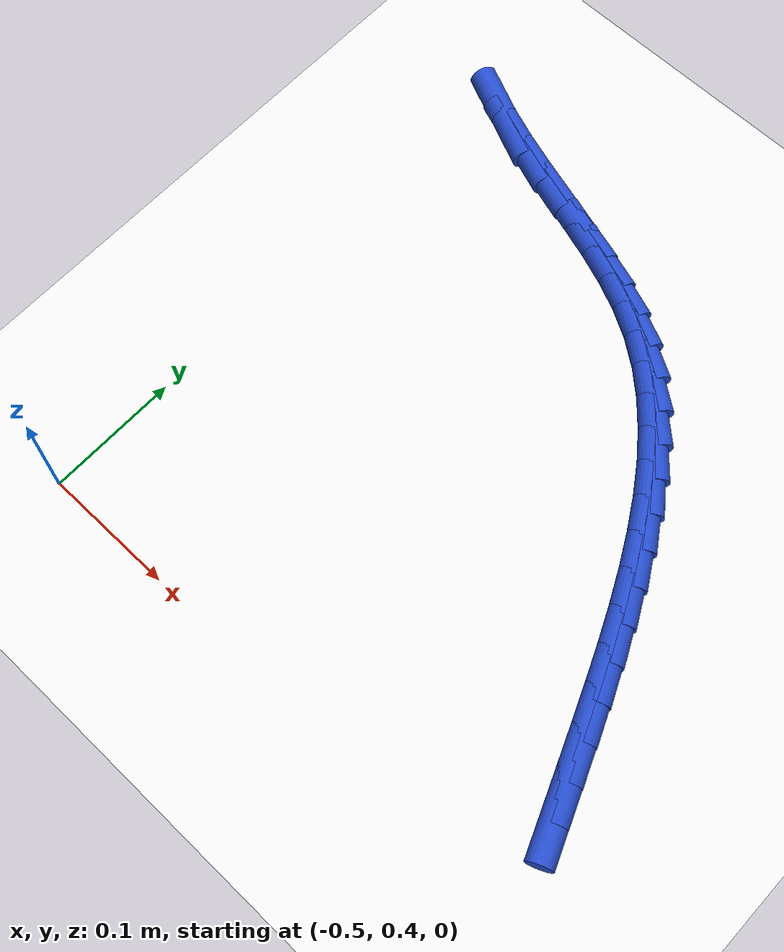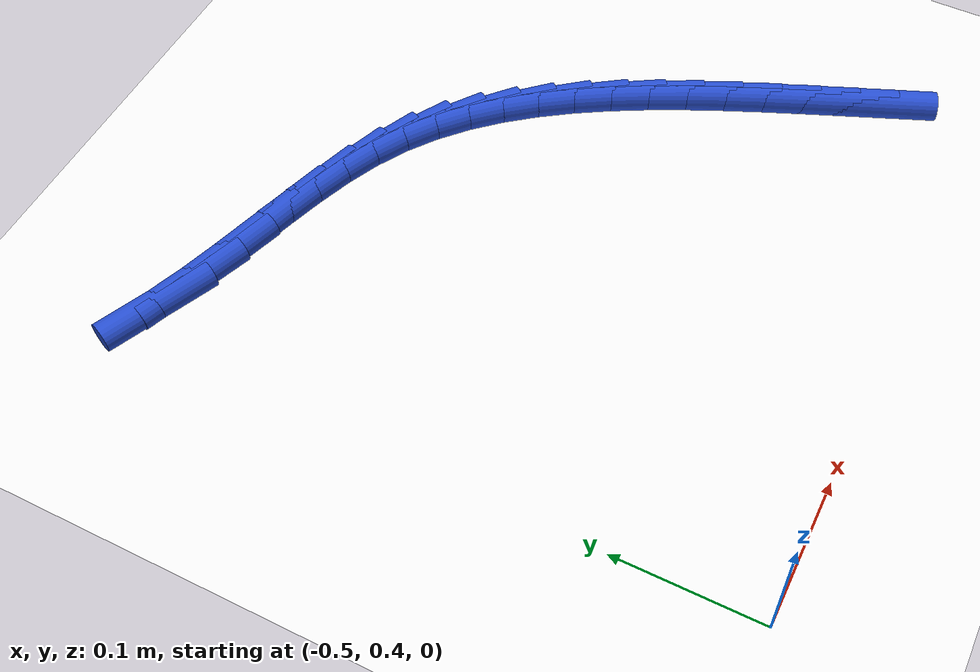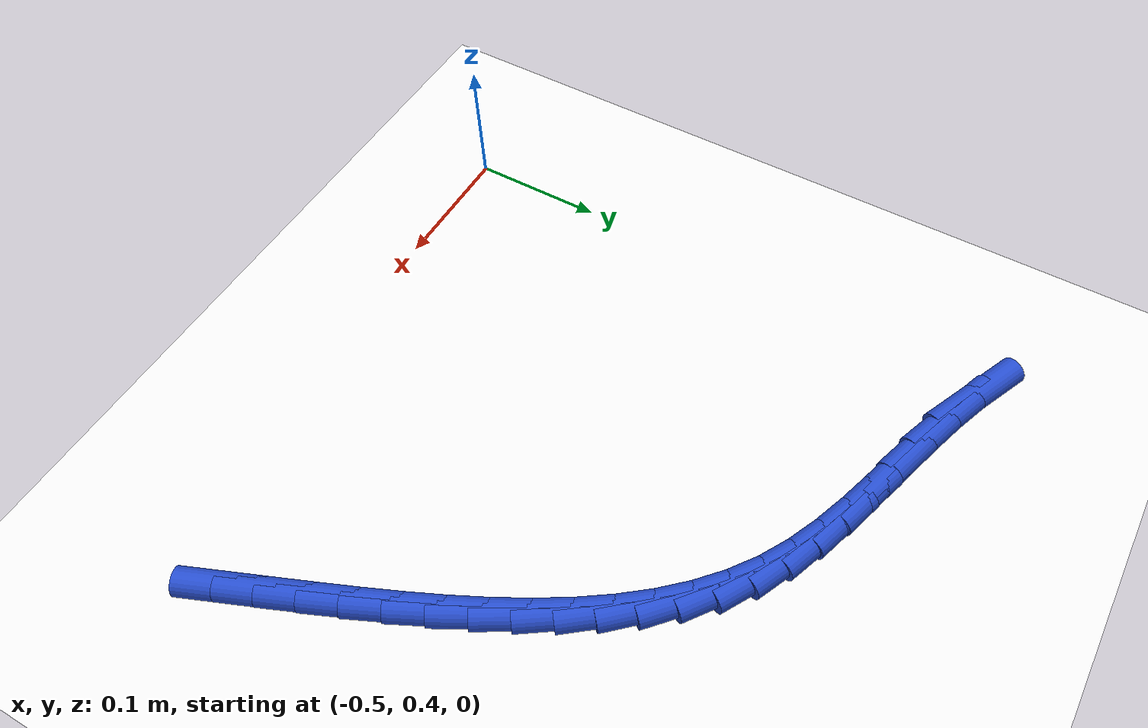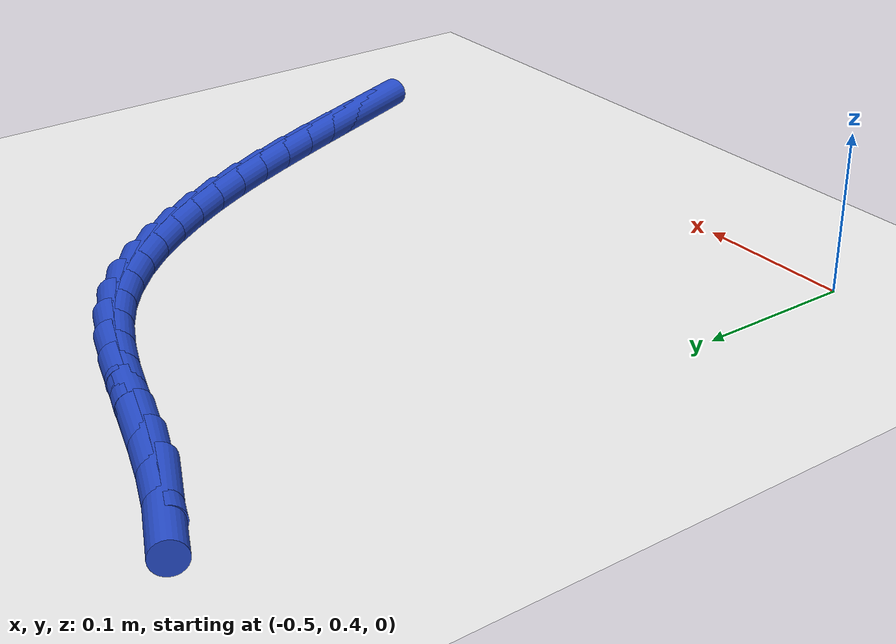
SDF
<sdf version="1.6">
 <world name="default">
  <model name="ground_plane">
   <static>1</static>
   <link name="link">
    <collision name="collision">
     <geometry><plane><normal>0 0 1</normal><size>100 100</size></plane></geometry>
     <surface><friction><ode><mu>100</mu><mu2>50</mu2></ode></friction></surface>
    </collision>
    <visual name="visual">
     <cast_shadows>0</cast_shadows>
     <geometry><plane><normal>0 0 1</normal><size>100 100</size></plane></geometry>
     <material>
      <script><uri>file://media/materials/scripts/gazebo.material</uri><name>Gazebo/WhiteGlow</name></script>
     </material>
    </visual>
   </link>
  </model>
  <model name="line">
   <link name="link_19">
    <pose>-0.10848356889117092 0.47022789527790226 0.01 0 1.57 -1.1843311557571234</pose>
    <collision name="collision">
     <geometry><cylinder><radius>0.01</radius><length>0.08</length></cylinder></geometry>
    </collision>
    <visual name="visual">
     <material>
      <script><name>Gazebo/Blue</name><uri>file://media/materials/scripts/gazebo.material</uri></script>
     </material>
     <geometry><cylinder><radius>0.01</radius><length>0.08</length></cylinder></geometry>
    </visual>
   </link>
   <link name="link_20">
    <pose>-0.11849428021562163 0.494828541328971 0.01 0 1.57 -1.1823245672838831</pose>
    <collision name="collision">
     <geometry><cylinder><radius>0.01</radius><length>0.08</length></cylinder></geometry>
    </collision>
    <visual name="visual">
     <material>
      <script><name>Gazebo/Blue</name><uri>file://media/materials/scripts/gazebo.material</uri></script>
     </material>
     <geometry><cylinder><radius>0.01</radius><length>0.08</length></cylinder></geometry>
    </visual>
   </link>
   <link name="link_21">
    <pose>-0.12868170892180247 0.5197202737119428 0.01 0 1.57 -1.1761671465852923</pose>
    <collision name="collision">
     <geometry><cylinder><radius>0.01</radius><length>0.08</length></cylinder></geometry>
    </collision>
    <visual name="visual">
     <material>
      <script><name>Gazebo/Blue</name><uri>file://media/materials/scripts/gazebo.material</uri></script>
     </material>
     <geometry><cylinder><radius>0.01</radius><length>0.08</length></cylinder></geometry>
    </visual>
   </link>
   <link name="link_22">
    <pose>-0.13911452883023867 0.5447704668550407 0.01 0 1.57 -1.1628799807247618</pose>
    <collision name="collision">
     <geometry><cylinder><radius>0.01</radius><length>0.08</length></cylinder></geometry>
    </collision>
    <visual name="visual">
     <material>
      <script><name>Gazebo/Blue</name><uri>file://media/materials/scripts/gazebo.material</uri></script>
     </material>
     <geometry><cylinder><radius>0.01</radius><length>0.08</length></cylinder></geometry>
    </visual>
   </link>
   <link name="link_23">
    <pose>-0.14991313088695515 0.5697581972686315 0.01 0 1.57 -1.142280752724943</pose>
    <collision name="collision">
     <geometry><cylinder><radius>0.01</radius><length>0.08</length></cylinder></geometry>
    </collision>
    <visual name="visual">
     <material>
      <script><name>Gazebo/Blue</name><uri>file://media/materials/scripts/gazebo.material</uri></script>
     </material>
     <geometry><cylinder><radius>0.01</radius><length>0.08</length></cylinder></geometry>
    </visual>
   </link>
   <link name="link_24">
    <pose>-0.16119835637123747 0.5944617725980527 0.01 0 1.57 -1.113988222840046</pose>
    <collision name="collision">
     <geometry><cylinder><radius>0.01</radius><length>0.08</length></cylinder></geometry>
    </collision>
    <visual name="visual">
     <material>
      <script><name>Gazebo/Blue</name><uri>file://media/materials/scripts/gazebo.material</uri></script>
     </material>
     <geometry><cylinder><radius>0.01</radius><length>0.08</length></cylinder></geometry>
    </visual>
   </link>
   <link name="link_25">
    <pose>-0.17309104656237134 0.6186595004886406 0.01 0 1.57 -1.0774099486632638</pose>
    <collision name="collision">
     <geometry><cylinder><radius>0.01</radius><length>0.08</length></cylinder></geometry>
    </collision>
    <visual name="visual">
     <material>
      <script><name>Gazebo/Blue</name><uri>file://media/materials/scripts/gazebo.material</uri></script>
     </material>
     <geometry><cylinder><radius>0.01</radius><length>0.08</length></cylinder></geometry>
    </visual>
   </link>
   <link name="link_26">
    <pose>-0.18571204273964248 0.6421296885857328 0.01 0 1.57 -1.031763293250655</pose>
    <collision name="collision">
     <geometry><cylinder><radius>0.01</radius><length>0.08</length></cylinder></geometry>
    </collision>
    <visual name="visual">
     <material>
      <script><name>Gazebo/Blue</name><uri>file://media/materials/scripts/gazebo.material</uri></script>
     </material>
     <geometry><cylinder><radius>0.01</radius><length>0.08</length></cylinder></geometry>
    </visual>
   </link>
   <link name="link_27">
    <pose>-0.19918218618233643 0.6646506445346656 0.01 0 1.57 -0.9761185756669005</pose>
    <collision name="collision">
     <geometry><cylinder><radius>0.01</radius><length>0.08</length></cylinder></geometry>
    </collision>
    <visual name="visual">
     <material>
      <script><name>Gazebo/Blue</name><uri>file://media/materials/scripts/gazebo.material</uri></script>
     </material>
     <geometry><cylinder><radius>0.01</radius><length>0.08</length></cylinder></geometry>
    </visual>
   </link>
   <link name="link_28">
    <pose>-0.21362231816973884 0.6860006759807761 0.01 0 1.57 -0.9094869585952983</pose>
    <collision name="collision">
     <geometry><cylinder><radius>0.01</radius><length>0.08</length></cylinder></geometry>
    </collision>
    <visual name="visual">
     <material>
      <script><name>Gazebo/Blue</name><uri>file://media/materials/scripts/gazebo.material</uri></script>
     </material>
     <geometry><cylinder><radius>0.01</radius><length>0.08</length></cylinder></geometry>
    </visual>
   </link>
   <link name="link_29">
    <pose>-0.22915327998113538 0.7059580905694012 0.01 0 1.57 -0.8309826037865946</pose>
    <collision name="collision">
     <geometry><cylinder><radius>0.01</radius><length>0.08</length></cylinder></geometry>
    </collision>
    <visual name="visual">
     <material>
      <script><name>Gazebo/Blue</name><uri>file://media/materials/scripts/gazebo.material</uri></script>
     </material>
     <geometry><cylinder><radius>0.01</radius><length>0.08</length></cylinder></geometry>
    </visual>
   </link>
   <link name="link_30">
    <pose>-0.24589591289581172 0.7243011959458776 0.01 0 1.57 -0.7400868185193471</pose>
    <collision name="collision">
     <geometry><cylinder><radius>0.01</radius><length>0.08</length></cylinder></geometry>
    </collision>
    <visual name="visual">
     <material>
      <script><name>Gazebo/Blue</name><uri>file://media/materials/scripts/gazebo.material</uri></script>
     </material>
     <geometry><cylinder><radius>0.01</radius><length>0.08</length></cylinder></geometry>
    </visual>
   </link>
   <link name="link_31">
    <pose>-0.26397105819305355 0.7408082997555427 0.01 0 1.57 -0.6370147606950207</pose>
    <collision name="collision">
     <geometry><cylinder><radius>0.01</radius><length>0.08</length></cylinder></geometry>
    </collision>
    <visual name="visual">
     <material>
      <script><name>Gazebo/Blue</name><uri>file://media/materials/scripts/gazebo.material</uri></script>
     </material>
     <geometry><cylinder><radius>0.01</radius><length>0.08</length></cylinder></geometry>
    </visual>
   </link>
   <link name="link_32">
    <pose>-0.2834995571521465 0.755257709643733 0.01 0 1.57 -0.5255721786639235</pose>
    <collision name="collision">
     <geometry><cylinder><radius>0.01</radius><length>0.08</length></cylinder></geometry>
    </collision>
    <visual name="visual">
     <material>
      <script><name>Gazebo/Blue</name><uri>file://media/materials/scripts/gazebo.material</uri></script>
     </material>
     <geometry><cylinder><radius>0.01</radius><length>0.08</length></cylinder></geometry>
    </visual>
   </link>
   <link name="link_33">
    <pose>-0.3045726057084721 0.7674797507098817 0.01 0 1.57 -0.4290555227034722</pose>
    <collision name="collision">
     <geometry><cylinder><radius>0.01</radius><length>0.08</length></cylinder></geometry>
    </collision>
    <visual name="visual">
     <material>
      <script><name>Gazebo/Blue</name><uri>file://media/materials/scripts/gazebo.material</uri></script>
     </material>
     <geometry><cylinder><radius>0.01</radius><length>0.08</length></cylinder></geometry>
    </visual>
   </link>
   <link name="link_34">
    <pose>-0.32702653983433433 0.7777519402490459 0.01 0 1.57 -0.3587634826626513</pose>
    <collision name="collision">
     <geometry><cylinder><radius>0.01</radius><length>0.08</length></cylinder></geometry>
    </collision>
    <visual name="visual">
     <material>
      <script><name>Gazebo/Blue</name><uri>file://media/materials/scripts/gazebo.material</uri></script>
     </material>
     <geometry><cylinder><radius>0.01</radius><length>0.08</length></cylinder></geometry>
    </visual>
   </link>
   <link name="link_35">
    <pose>-0.3505677990555753 0.7865797194576891 0.01 0 1.57 -0.31356564099690865</pose>
    <collision name="collision">
     <geometry><cylinder><radius>0.01</radius><length>0.08</length></cylinder></geometry>
    </collision>
    <visual name="visual">
     <material>
      <script><name>Gazebo/Blue</name><uri>file://media/materials/scripts/gazebo.material</uri></script>
     </material>
     <geometry><cylinder><radius>0.01</radius><length>0.08</length></cylinder></geometry>
    </visual>
   </link>
   <link name="link_36">
    <pose>-0.37490178841728555 0.7944703446926963 0.01 0 1.57 -0.29186647726337633</pose>
    <collision name="collision">
     <geometry><cylinder><radius>0.01</radius><length>0.08</length></cylinder></geometry>
    </collision>
    <visual name="visual">
     <material>
      <script><name>Gazebo/Blue</name><uri>file://media/materials/scripts/gazebo.material</uri></script>
     </material>
     <geometry><cylinder><radius>0.01</radius><length>0.08</length></cylinder></geometry>
    </visual>
   </link>
   <link name="link_37">
    <pose>-0.39973391296455635 0.8019310723109544 0.01 0 1.57 -0.29246008512684474</pose>
    <collision name="collision">
     <geometry><cylinder><radius>0.01</radius><length>0.08</length></cylinder></geometry>
    </collision>
    <visual name="visual">
     <material>
      <script><name>Gazebo/Blue</name><uri>file://media/materials/scripts/gazebo.material</uri></script>
     </material>
     <geometry><cylinder><radius>0.01</radius><length>0.08</length></cylinder></geometry>
    </visual>
   </link>
   <link name="link_38">
    <pose>-0.4247695777424789 0.8094691586693493 0.01 0 1.57 -0.3148011750580302</pose>
    <collision name="collision">
     <geometry><cylinder><radius>0.01</radius><length>0.08</length></cylinder></geometry>
    </collision>
    <visual name="visual">
     <material>
      <script><name>Gazebo/Blue</name><uri>file://media/materials/scripts/gazebo.material</uri></script>
     </material>
     <geometry><cylinder><radius>0.01</radius><length>0.08</length></cylinder></geometry>
    </visual>
   </link>
   <link name="link_39">
    <pose>-0.4497141877961438 0.8175918601247669 0.01 0 1.57 -0.35894782074927645</pose>
    <collision name="collision">
     <geometry><cylinder><radius>0.01</radius><length>0.08</length></cylinder></geometry>
    </collision>
    <visual name="visual">
     <material>
      <script><name>Gazebo/Blue</name><uri>file://media/materials/scripts/gazebo.material</uri></script>
     </material>
     <geometry><cylinder><radius>0.01</radius><length>0.08</length></cylinder></geometry>
    </visual>
   </link>
   <link name="link_40">
    <pose>-0.4742731481706419 0.8268064330340932 0.01 0 1.57 -0.42522925370393405</pose>
    <collision name="collision">
     <geometry><cylinder><radius>0.01</radius><length>0.08</length></cylinder></geometry>
    </collision>
    <visual name="visual">
     <material>
      <script><name>Gazebo/Blue</name><uri>file://media/materials/scripts/gazebo.material</uri></script>
     </material>
     <geometry><cylinder><radius>0.01</radius><length>0.08</length></cylinder></geometry>
    </visual>
   </link>
  </model>
 </world>
</sdf>
